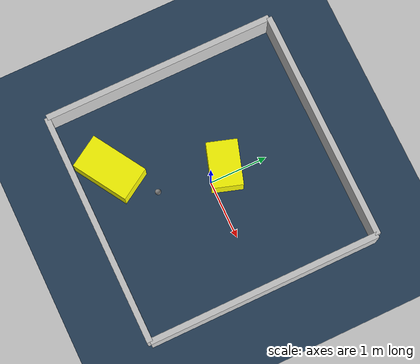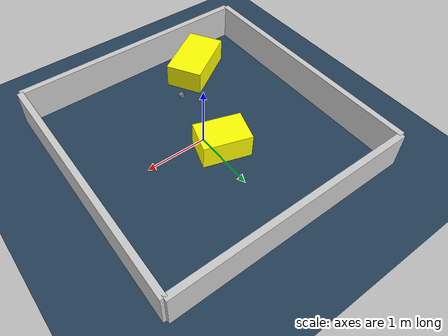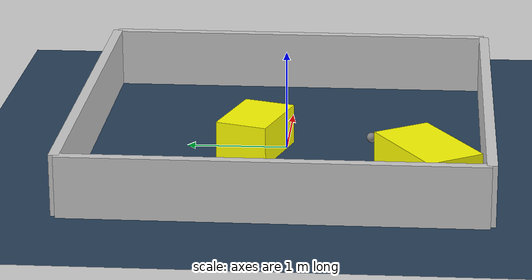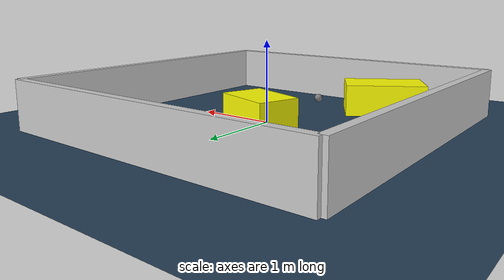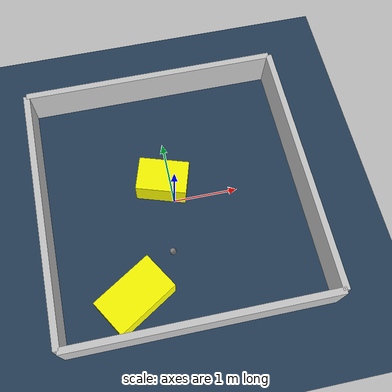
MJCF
<?xml version="1.0" ?>
<mujoco model="generated_environment">
  <option timestep="0.01" integrator="RK4" cone="elliptic"/>
  <default>
    <geom density="1"/>
  </default>
  <asset>
    <texture builtin="gradient" height="3072" rgb1="0.3 0.5 0.7" rgb2="0 0 0" type="skybox" width="512"/>
    <texture builtin="checker" height="300" mark="edge" markrgb="0.8 0.8 0.8" name="groundplane" rgb1="0.2 0.3 0.4" rgb2="0.1 0.2 0.3" type="2d" width="300"/>
    <material name="groundplane" reflectance="0.2" texrepeat="5 5" texture="groundplane" texuniform="true"/>
    <material name="robot" rgba="0.0 1.0 0.0 1"/>
  </asset>
  <worldbody>
    <light dir="0 0 -1" directional="true" pos="0 0 1.5"/>
    <geom condim="4" friction="1.0 0.005 0.001" material="groundplane" name="floor" size="0 0 0.05" type="plane"/>
    <body name="walls">
      <geom name="wall_1" condim="4" pos="-2.0 0.0 0.3" rgba="0.800000011920929 0.800000011920929 0.800000011920929 1.0" size="0.05 2.0 0.3" type="box"/>
      <geom name="wall_2" condim="4" pos="2.0 0.0 0.3" rgba="0.800000011920929 0.800000011920929 0.800000011920929 1.0" size="0.05 2.0 0.3" type="box"/>
      <geom name="wall_3" condim="4" pos="0.0 -2.0 0.3" rgba="0.800000011920929 0.800000011920929 0.800000011920929 1.0" size="2.0 0.05 0.3" type="box"/>
      <geom name="wall_4" condim="4" pos="0.0 2.0 0.3" rgba="0.800000011920929 0.800000011920929 0.800000011920929 1.0" size="2.0 0.05 0.3" type="box"/>
    </body>
    <body name="robot">
      <joint name="joint_x" type="slide" pos="0 0 0" axis="1 0 0"/>
      <joint name="joint_y" type="slide" pos="0 0 0" axis="0 1 0"/>
      <geom name="robot" type="sphere" pos="-0.1974050461686574 -0.8601230711564091 0.2" size="0.05" mass="5." friction="1.0 0.005 0.0001" condim="4"/>
      <site name="sensor_ball"/>
    </body>
    <body name="obstacle_1_movable">
      <geom name="obstacle_1_movable" condim="4" pos="-0.12572208014230135 0.30458698721705746 0.2" euler="0 0 72.41465328855472" friction="1.0 0.005 0.001" rgba="1 1 0 1" size="0.2627887554949899 0.38652923845170184 0.2" type="box" mass="0.1"/>
      <joint type="free"/>
    </body>
    <body name="obstacle_2_movable">
      <geom name="obstacle_2_movable" condim="4" pos="-0.8666565730964197 -1.4172241696934278 0.2" euler="0 0 211.5923826732531" friction="1.0 0.005 0.001" rgba="1 1 0 1" size="0.5082406380661117 0.3005455061168302 0.2" type="box" mass="0.1"/>
      <joint type="free"/>
    </body>
  </worldbody>
  <actuator>
    <motor name="actuator_x" joint="joint_x" gear="1" ctrlrange="-1 1"/>
    <motor name="actuator_y" joint="joint_y" gear="1" ctrlrange="-1 1"/>
  </actuator>
</mujoco>
